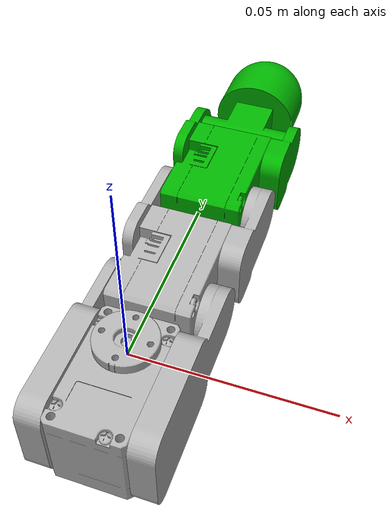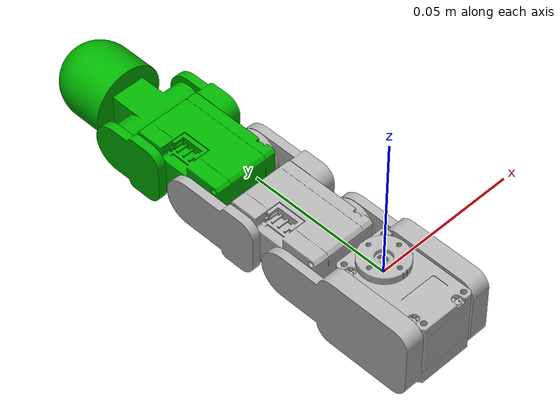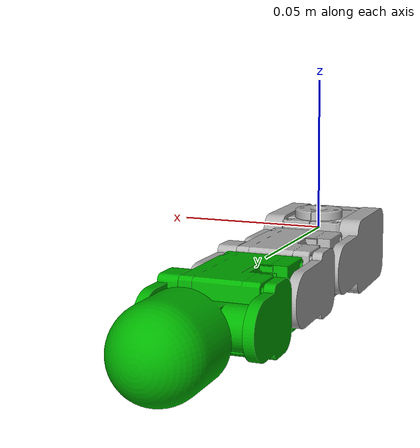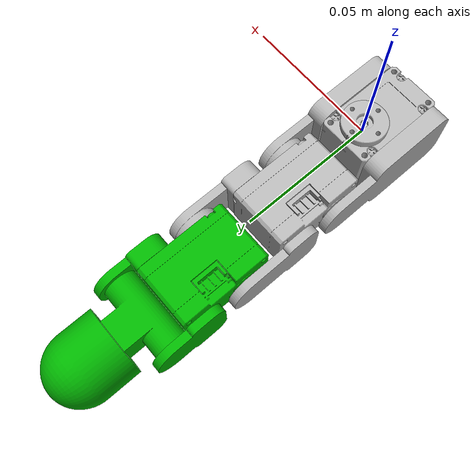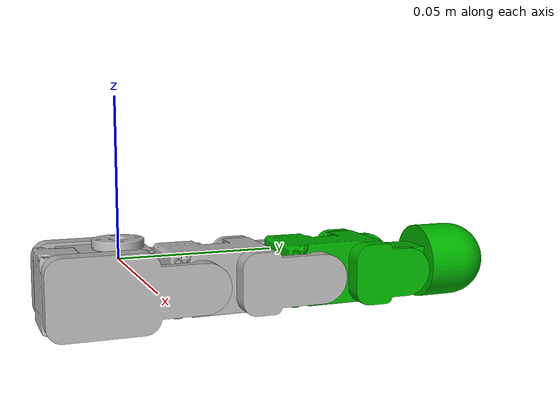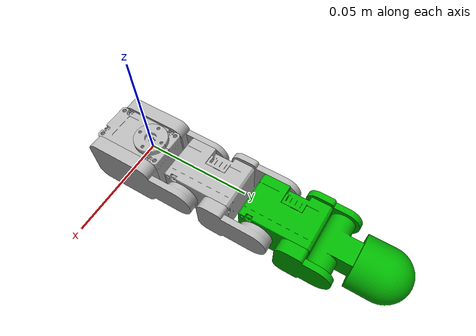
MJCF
<mujoco model="iiwa7">
    <compiler angle="radian" inertiafromgeom="true" meshdir="/home/xiao/research/lasa/mujoco_new/crawling_robot/descriptions/single_finger/shortest/meshes/"/>
    <size njmax="500" nconmax="100" />

    <option>
        <flag gravity="enable" />
    </option>

    <default>
        <joint limited='true' damping='1' armature='0'/>
        <geom contype='1' conaffinity='1' condim='3' rgba='0.8 0.6 .4 1'
        	margin="0.001" solref=".02 1" solimp=".8 .8 .01" material="geom"/>
    </default>

 <default>
    <joint damping="0.01" frictionloss="0"/>
    <default class="visual">
      <geom contype="0" conaffinity="0"/>
    </default>
    <default class="collision">
      <geom contype="1" conaffinity="1" friction="1 0.5 0.1" />
    </default>
      <default class="obj">
      <geom condim="6" friction="1 0.5 0.1"  />
    </default>

      <default class="fingers">
      <geom friction="1 0.5 0.2"  />
    </default>
      <default class="visual1">
      <geom contype="1" conaffinity="1"/>
    </default>
        <default class="visual2">
     <geom contype="1" conaffinity="1"/>
    </default>
        <default class="visual3">
     <geom contype="1" conaffinity="1"/>
    </default>
        <default class="visual4">
     <geom contype="1" conaffinity="1"/>
    </default>
        <default class="visual5">
      <geom contype="1" conaffinity="1"/>
    </default>

    <site rgba="1 0 0 .5"/>
  </default>

        <asset>
            <mesh name="base_link" file="base_link.stl" scale="0.001 0.001 0.001" />
            <mesh name="MCP_spread_motor_1" file="MCP_spread_motor_1.stl" scale="0.001 0.001 0.001" />
            <mesh name="MCP_motor_1" file="MCP_motor_1.stl" scale="0.001 0.001 0.001" />
            <mesh name="proximal_1" file="proximal_1.stl" scale="0.001 0.001 0.001" />
            <mesh name="PIP_DIP_motor_1" file="PIP_DIP_motor_1.stl" scale="0.001 0.001 0.001" />
            <mesh name="middle_1" file="middle_1.stl" scale="0.001 0.001 0.001" />
            <mesh name="distal_1" file="distal_1.stl" scale="0.001 0.001 0.001" />
            <mesh name="metacarpal_1" file="metacarpal_1.stl" scale="0.001 0.001 0.001" />
            <texture name="texgeom" type="cube" builtin="flat" mark="cross" width="127" height="1278"
                rgb1="0.8 0.6 0.4" rgb2="0.8 0.6 0.4" markrgb="1 1 1" random="0.01"/>
            <texture name="texplane" type="2d" builtin="checker" rgb1=".2 .3 .4" rgb2=".1 0.15 0.2"
                width="512" height="512"/>

            <material name='MatPlane' reflectance='0.5' texture="texplane" texrepeat="1 1" texuniform="true"/>
            <material name='geom' texture="texgeom" texuniform="true"/>
             <texture builtin="flat" name="allegro_mount_tex" height="32" width="32" rgb1="0.2 0.2 0.2" type="cube"/>
             <texture builtin="flat" name="hand_tex" height="32" width="32" rgb1="0.2 0.2 0.2 " type="cube"/>
             <texture builtin="flat" name="tip_tex" height="32" width="32" rgb1="0.9 0.9 0.9" type="cube"/>

            <material name="allegro_mount_mat" shininess="0.03" specular="0.25"/>
            <material name="hand_mat" shininess="0.03" specular="0.25" />
            <material name="tip_mat" shininess="0.03" specular="0.25" />
        </asset>

    <worldbody>
        <light pos="0 0 10" castshadow="false"/>
         <light directional='false' diffuse='.8 .8 .8' specular='0.3 0.3 0.3' pos='0 0 4.0' dir='0 -.15 -1'/>

        <body name="finger_1" pos="0 0 0">
                <geom type="mesh" rgba="0.7 0.7 0.7 1" mesh="base_link" />
                <body name="MCP_spread_motor_1" pos="0 0 0.0036">
                    <inertial pos="0.000245265 -0.00496883 -0.0114693" quat="0.524663 0.474196 -0.523113 0.475625" mass="0.21816" diaginertia="5.65844e-05 4.36866e-05 3.19042e-05" />
                    <joint name="MCP_spread_1" type="hinge" pos="0 0 0" axis="0 0 -1" range="-2 2" />
                    <geom pos="0 0 -0.0036" type="mesh" rgba="0.7 0.7 0.7 1" mesh="MCP_spread_motor_1" name="MCP_spread_motor_1"/>
                    <geom pos="0 0 -0.0036" type="mesh" rgba="0.7 0.7 0.7 1" mesh="metacarpal_1" name="metacarpal_1"/>
                    <body name="MCP_motor_1" pos="0.0106 0.0235 -0.0116">
                        <inertial pos="-0.0103512 0.0125458 3.30732e-06" quat="0.535591 0.461692 -0.535523 0.461734" mass="0.151474" diaginertia="3.89252e-05 3.18099e-05 1.61153e-05" />
                        <joint name="MCP_1" pos="0 0 0" axis="-1 0 0" range="-2 2" />
                        <geom pos="-0.0106 -0.0235 0.008" type="mesh" rgba="0.7 0.7 0.7 1" mesh="MCP_motor_1" name="MCP_motor_1"/>
                        <geom pos="-0.0106 -0.0235 0.008" type="mesh" rgba="0.7 0.7 0.7 1" mesh="proximal_1" name="proximal_1"/>
                        <body name="PIP_DIP_motor_1" pos="0 0.039 0">
                            <inertial pos="-0.010709 0.0103943 3.56469e-06" quat="0.533676 0.463904 -0.533611 0.463942" mass="0.140537" diaginertia="2.81223e-05 2.20307e-05 1.40916e-05" />
                            <joint name="PIP_1" pos="0 0 0" axis="-1 0 0" range="-2 2" />
                            <geom pos="-0.0106 -0.0625 0.008" type="mesh" rgba="0 0.7 0 1" mesh="PIP_DIP_motor_1" name="PIP_DIP_motor_1" />
                            <geom pos="-0.0106 -0.0625 0.008" type="mesh" rgba="0 0.7 0 1" mesh="middle_1" name="middle_1"/>
                            <body name="distal_1" pos="0.0029 0.0305 0">
                                <inertial pos="-0.0135 0.0167496 0" quat="0.5 0.5 -0.5 0.5" mass="0.112487" diaginertia="1.8e-05 1.7e-05 8e-06" />
                                <joint name="DIP_1" pos="0 0 0" axis="1 0 0"  range="-2 2"/>
                                <geom pos="-0.0135 -0.093 0.008" type="mesh" rgba="0 0.7 0 1" mesh="distal_1" name="distal_1"/>
                                <site name="finger_1_tip" pos="-0.0135 0.026 0" euler="0 0 0" size="0.005  0.005 0.005"/>
                            </body>
                        </body>
                    </body>
                </body>
         </body>

    </worldbody>

      <actuator>
          <motor name="joint_11" ctrllimited="true" ctrlrange="-3 3" joint="MCP_spread_1"/>
          <motor name="joint_12" ctrllimited="true" ctrlrange="-3 3" joint="MCP_1"/>
          <motor name="joint_13" ctrllimited="true" ctrlrange="-3 3" joint="PIP_1"/>
          <motor name="joint_14" ctrllimited="true" ctrlrange="-3 3" joint="DIP_1"/>
    </actuator>

</mujoco>
